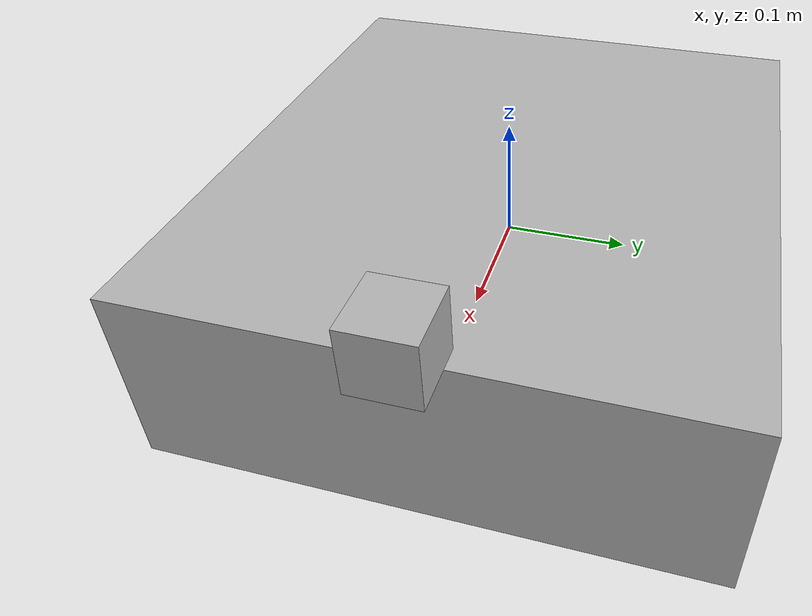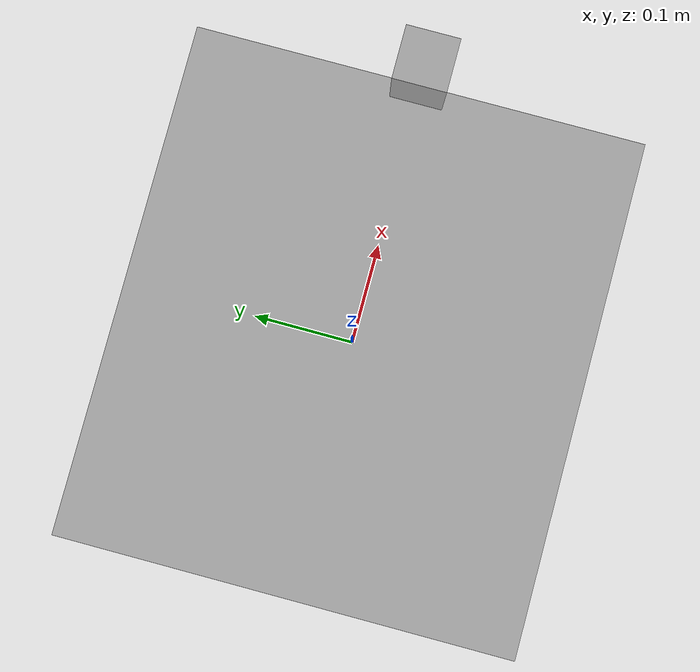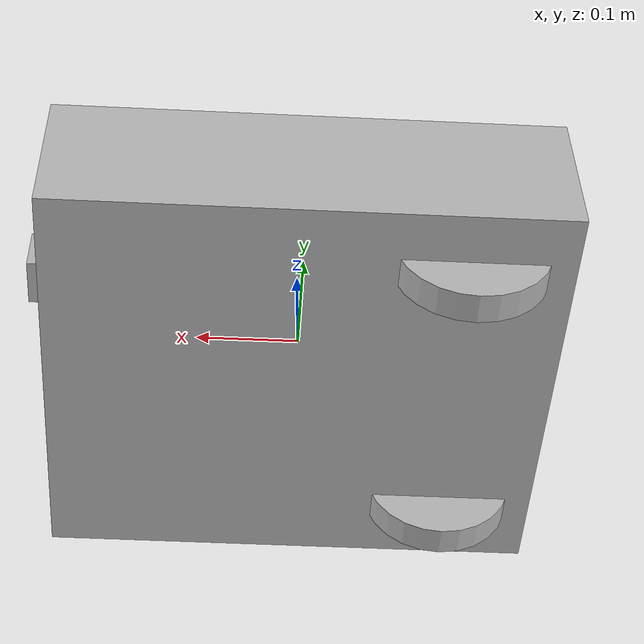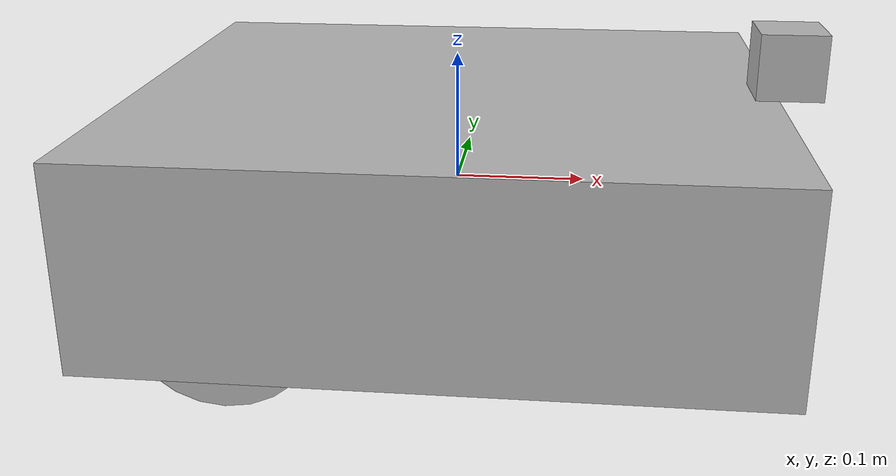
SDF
<?xml version="1.0" ?>
<sdf version="1.5">
  <model name="orne_gamma">
  <pose>0.0 0.0 0.0 0.0 0.0 0.0</pose>

    <link name="base_footprint"/>

    <link name="base_link">

      <inertial>
        <pose>0 0 0 0 0 0</pose>
        <inertia>
          <ixx>0.25925</ixx>
          <ixy>0</ixy>
          <ixz>0</ixz>
          <iyy>0.32216</iyy>
          <iyz>0</iyz>
          <izz>0.52516</izz>
        </inertia>
        <mass>15</mass>
      </inertial>

      <collision name="base_collision">
        <pose>0 0 0 0 0 0</pose>
        <geometry>
          <box>
            <size>0.485 0.43 0.15</size>
          </box>
        </geometry>
      </collision>

      <visual name="base_visual">
        <pose>0 0 0 0 0 0</pose>
        <geometry>
          <box>
            <size>0.485 0.43 0.15</size>
          </box>
        </geometry>
      </visual>
    </link>

    <link name="hokuyo_link">
      <inertial>
        <pose>0.25 0 0.1 0 0 0</pose>
        <inertia>
          <ixx>0.005</ixx>
          <ixy>0.000</ixy>
          <ixz>0.000</ixz>
          <iyy>0.005</iyy>
          <iyz>0.000</iyz>
          <izz>0.005</izz>
        </inertia>
        <mass>0.2</mass>
      </inertial>

      <collision name="lidar_sensor_collision">
        <pose>0.25 0 0.1 0 0 0</pose>
        <geometry>
          <cylinder>
            <radius>0.001</radius>
            <length>0.001</length>
          </cylinder>
        </geometry>
      </collision>

      <visual name="lidar_sensor_visual">
        <pose>0.25 0 0.1 0 0 0</pose>
        <geometry>
          <box>
            <size>0.05 0.05 0.05</size>
          </box>
        </geometry>
      </visual>

      <sensor name="hls_lfcd_lds" type="ray">
        <always_on>true</always_on>
        <visualize>true</visualize>
        <pose>0.25 0 0.1 0 0 0</pose>
        <update_rate>5</update_rate>
        <ray>
          <scan>
            <horizontal>
              <samples>720</samples>
              <resolution>1.000000</resolution>
              <min_angle>-1.570796</min_angle>
              <max_angle>1.570796</max_angle>
            </horizontal>
          </scan>
          <range>
            <min>0.1</min>
            <max>30.0</max>
            <resolution>0.01</resolution>
          </range>
          <noise>
            <type>gaussian</type>
            <mean>0.0</mean>
            <stddev>0.01</stddev>
          </noise>
        </ray>
        <plugin name="gamma_laserscan" filename="libgazebo_ros_ray_sensor.so">
          <ros>
            <remapping>~/out:=scan</remapping>
          </ros>
          <output_type>sensor_msgs/LaserScan</output_type>
          <frame_name>hokuyo_link</frame_name>
        </plugin>
      </sensor>
    </link>

    <link name="left_wheel">

      <material>Gazebo/Orange</material>

      <inertial>
        <pose>-0.15 0.15 -0.05 -1.57 0 0</pose>
        <inertia>
          <ixx>0.001</ixx>
          <ixy>0</ixy>
          <ixz>0</ixz>
          <iyy>0.002</iyy>
          <iyz>0</iyz>
          <izz>0.001</izz>
        </inertia>
        <mass>1</mass>
      </inertial>

      <collision name="left_wheel_collision">
        <pose>-0.15 0.15 -0.05 -1.57 0 0</pose>
        <geometry>
          <cylinder>
            <radius>0.0725</radius>
            <length>0.03</length>
          </cylinder>
        </geometry>
        <surface>
          <!-- This friction pamareter don't contain reliable data!! -->
          <friction>
            <ode>
              <mu>1.0</mu>
              <mu2>1.0</mu2>
              <fdir1>0 0 0</fdir1>
              <slip1>0.0</slip1>
              <slip2>0.0</slip2>
            </ode>
          </friction>
          <contact>
            <ode>
              <soft_cfm>0</soft_cfm>
              <soft_erp>0.2</soft_erp>
              <kp>1e+5</kp>
              <kd>100.0</kd>
              <max_vel>0.1</max_vel>
              <min_depth>0.001</min_depth>
            </ode>
          </contact>
        </surface>
      </collision>

      <visual name="left_wheel_visual">
        <pose>-0.15 0.15 -0.05 -1.57 0 0</pose>
        <geometry>
          <cylinder>
            <radius>0.0725</radius>
            <length>0.03</length>
          </cylinder>
          <material>Gazebo/Orange</material>
        </geometry>
      </visual>
    </link>

    <link name="right_wheel">

      <inertial>
        <pose>-0.15 -0.15 -0.05 -1.57 0 0</pose>
        <inertia>
          <ixx>0.001</ixx>
          <ixy>0</ixy>
          <ixz>0</ixz>
          <iyy>0.002</iyy>
          <iyz>0</iyz>
          <izz>0.001</izz>
        </inertia>
        <mass>1</mass>
      </inertial>

      <collision name="right_wheel_collision">
        <pose>-0.15 -0.15 -0.05 -1.57 0 0</pose>
        <geometry>
          <cylinder>
            <radius>0.0725</radius>
            <length>0.03</length>
          </cylinder>
        </geometry>
        <surface>
          <!-- This friction pamareter don't contain reliable data!! -->
          <friction>
            <ode>
              <mu>1.0</mu>
              <mu2>1.0</mu2>
              <fdir1>0 0 0</fdir1>
              <slip1>0.0</slip1>
              <slip2>0.0</slip2>
            </ode>
          </friction>
          <contact>
            <ode>
              <soft_cfm>0</soft_cfm>
              <soft_erp>0.2</soft_erp>
              <kp>1e+5</kp>
              <kd>100.0</kd>
              <max_vel>0.1</max_vel>
              <min_depth>0.001</min_depth>
            </ode>
          </contact>
        </surface>
      </collision>

      <visual name="right_wheel_visual">
        <pose>-0.15 -0.15 -0.05 -1.57 0 0</pose>
        <geometry>
          <cylinder>
            <radius>0.0725</radius>
            <length>0.03</length>
          </cylinder>
        </geometry>
      </visual>
    </link>

    <link name='caster_back_right_link'>
      <pose>0.15 -0.064 -0.082 -1.57 0 0</pose>
      <inertial>
        <mass>0.001</mass>
        <inertia>
          <ixx>0.00001</ixx>
          <ixy>0.000</ixy>
          <ixz>0.000</ixz>
          <iyy>0.00001</iyy>
          <iyz>0.000</iyz>
          <izz>0.00001</izz>
        </inertia>
      </inertial>
      <collision name='collision'>
        <geometry>
          <sphere>
            <radius>0.04265</radius>
          </sphere>
        </geometry>
        <surface>
          <contact>
            <ode>
              <soft_cfm>0</soft_cfm>
              <soft_erp>0.2</soft_erp>
              <kp>1e+5</kp>
              <kd>1</kd>
              <max_vel>0.01</max_vel>
              <min_depth>0.001</min_depth>
            </ode>
          </contact>
        </surface>
      </collision>
    </link>

    <link name='caster_back_left_link'>
      <pose>0.15 0.064 -0.082 -1.57 0 0</pose>
      <inertial>
        <mass>0.001</mass>
        <inertia>
          <ixx>0.00001</ixx>
          <ixy>0.000</ixy>
          <ixz>0.000</ixz>
          <iyy>0.00001</iyy>
          <iyz>0.000</iyz>
          <izz>0.00001</izz>
        </inertia>
      </inertial>
      <collision name='collision'>
        <geometry>
          <sphere>
            <radius>0.04265</radius>
          </sphere>
        </geometry>
        <surface>
          <contact>
            <ode>
              <soft_cfm>0</soft_cfm>
              <soft_erp>0.2</soft_erp>
              <kp>1e+5</kp>
              <kd>1</kd>
              <max_vel>0.01</max_vel>
              <min_depth>0.001</min_depth>
            </ode>
          </contact>
        </surface>
      </collision>
    </link>

    <link name="camera_link"/>

    <link name="camera_rgb_optical_frame">
      <inertial>
        <pose>0.076 0.0 0.093 0 0 0</pose>
        <inertia>
          <ixx>0.001</ixx>
          <ixy>0.000</ixy>
          <ixz>0.000</ixz>
          <iyy>0.001</iyy>
          <iyz>0.000</iyz>
          <izz>0.001</izz>
        </inertia>
        <mass>0.035</mass>
      </inertial>

      <pose>0.076 0.0 0.093 0 0 0</pose>
      <sensor name="camera" type="camera">
        <always_on>true</always_on>
        <visualize>true</visualize>
        <update_rate>30</update_rate>
        <camera name="picam">
          <horizontal_fov>1.085595</horizontal_fov>
          <image>
              <width>640</width>
              <height>480</height>
              <format>R8G8B8</format>
          </image>
          <clip>
              <near>0.03</near>
              <far>100</far>
          </clip>
          <noise>
            <type>gaussian</type>
            <mean>0.0</mean>
            <stddev>0.007</stddev>
          </noise>
        </camera>
          <plugin name="camera_driver" filename="libgazebo_ros_camera.so">
            <ros>
            </ros>
          </plugin>
      </sensor>
    </link>

    <link name="camera_rgb_optical_left_frame">
      <inertial>
        <pose>0.076 0.1 0.093 0 0 0.175</pose>
        <inertia>
          <ixx>0.001</ixx>
          <ixy>0.000</ixy>
          <ixz>0.000</ixz>
          <iyy>0.001</iyy>
          <iyz>0.000</iyz>
          <izz>0.001</izz>
        </inertia>
        <mass>0.035</mass>
      </inertial>

      <pose>0.076 0.1 0.093 0 0 0.175</pose>
      <sensor name="camera_left" type="camera">
        <always_on>true</always_on>
        <visualize>true</visualize>
        <update_rate>30</update_rate>
        <camera name="picam">
          <horizontal_fov>1.085595</horizontal_fov>
          <image>
              <width>640</width>
              <height>480</height>
              <format>R8G8B8</format>
          </image>
          <clip>
              <near>0.03</near>
              <far>100</far>
          </clip>
          <noise>
            <type>gaussian</type>
            <mean>0.0</mean>
            <stddev>0.007</stddev>
          </noise>
        </camera>
          <plugin name="camera_driver_left" filename="libgazebo_ros_camera.so">
            <ros>
            </ros>
          </plugin>
      </sensor>
    </link>

    <link name="camera_rgb_optical_right_frame">
      <inertial>
        <pose>0.076 -0.1 0.093 0 0 -0.175</pose>
        <inertia>
          <ixx>0.001</ixx>
          <ixy>0.000</ixy>
          <ixz>0.000</ixz>
          <iyy>0.001</iyy>
          <iyz>0.000</iyz>
          <izz>0.001</izz>
        </inertia>
        <mass>0.035</mass>
      </inertial>

      <pose>0.076 -0.1 0.093 0 0 -0.175</pose>
      <sensor name="camera_right" type="camera">
        <always_on>true</always_on>
        <visualize>true</visualize>
        <update_rate>30</update_rate>
        <camera name="picam">
          <horizontal_fov>1.085595</horizontal_fov>
          <image>
              <width>640</width>
              <height>480</height>
              <format>R8G8B8</format>
          </image>
          <clip>
              <near>0.03</near>
              <far>100</far>
          </clip>
          <noise>
            <type>gaussian</type>
            <mean>0.0</mean>
            <stddev>0.007</stddev>
          </noise>
        </camera>
          <plugin name="camera_driver_right" filename="libgazebo_ros_camera.so">
            <ros>
            </ros>
          </plugin>
      </sensor>
    </link>

    <joint name="base_joint" type="fixed">
      <parent>base_footprint</parent>
      <child>base_link</child>
      <pose>0.0 0.0 0.0 0 0 0</pose>
    </joint>

    <joint name="left_wheel_joint" type="revolute">
      <parent>base_link</parent>
      <child>left_wheel</child>
      <pose>-0.15 0.15 -0.05 -1.57 0 0</pose>
      <axis>
        <xyz>0 0 1</xyz>
      </axis>
    </joint>

    <joint name="right_wheel_joint" type="revolute">
      <parent>base_link</parent>
      <child>right_wheel</child>
      <pose>-0.15 -0.15 -0.05 -1.57 0 0</pose>
      <axis>
        <xyz>0 0 1</xyz>
      </axis>
    </joint>

    <joint name='caster_back_right_joint' type='ball'>
      <parent>base_link</parent>
      <child>caster_back_right_link</child>
    </joint>

    <joint name='caster_back_left_joint' type='ball'>
      <parent>base_link</parent>
      <child>caster_back_left_link</child>
    </joint>

    <joint name="hokuyo_joint" type="fixed">
      <parent>base_link</parent>
      <child>hokuyo_link</child>
      <pose>0.25 0 0.1 0 0 0</pose>
      <axis>
        <xyz>0 0 1</xyz>
      </axis>
    </joint>

    <joint name="camera_joint" type="fixed">
      <parent>base_link</parent>
      <child>camera_link</child>
      <pose>0.073 -0.011 0.565 0 0.524 0</pose>
      <axis>
        <xyz>0 0 1</xyz>
      </axis>
    </joint>

    <joint name="camera_rgb_joint" type="fixed">
      <parent>camera_link</parent>
      <child>camera_rgb_optical_frame</child>
      <pose>0.003 0.011 0.009 0 0 0</pose>
      <axis>
        <xyz>0 0 1</xyz>
      </axis>
    </joint>

    <joint name="camera_rgb_left_joint" type="fixed">
      <parent>camera_link</parent>
      <child>camera_rgb_optical_left_frame</child>
      <pose>0.003 0.111 0.009 0 0 0.175</pose>
      <axis>
        <xyz>0 0 1</xyz>
      </axis>
    </joint>

    <joint name="camera_rgb_right_joint" type="fixed">
      <parent>camera_link</parent>
      <child>camera_rgb_optical_right_frame</child>
      <pose>0.003 -0.089 0.009 0 0 -0.175</pose>
      <axis>
        <xyz>0 0 1</xyz>
      </axis>
    </joint>

    <plugin name="gamma_diff_drive" filename="libgazebo_ros_diff_drive.so">

      <ros>
      </ros>

      <update_rate>30</update_rate>

      <!-- wheels -->
      <left_joint>left_wheel_joint</left_joint>
      <right_joint>right_wheel_joint</right_joint>

      <!-- kinematics -->
      <wheel_separation>0.4615</wheel_separation>
      <wheel_diameter>0.145</wheel_diameter>

      <!-- limits -->
      <max_wheel_torque>20</max_wheel_torque>
      <max_wheel_acceleration>1.0</max_wheel_acceleration>

      <command_topic>cmd_vel</command_topic>

      <!-- output -->
      <publish_odom>true</publish_odom>
      <publish_odom_tf>true</publish_odom_tf>
      <publish_wheel_tf>false</publish_wheel_tf>

      <odometry_topic>odom</odometry_topic>
      <odometry_frame>odom</odometry_frame>
      <robot_base_frame>base_footprint</robot_base_frame>

    </plugin>

    <plugin name="gamma_joint_state" filename="libgazebo_ros_joint_state_publisher.so">
      <ros>
        <remapping>~/out:=joint_states</remapping>
      </ros>
      <update_rate>30</update_rate>
      <joint_name>left_wheel_joint</joint_name>
      <joint_name>right_wheel_joint</joint_name>
    </plugin>

  </model>
</sdf>
